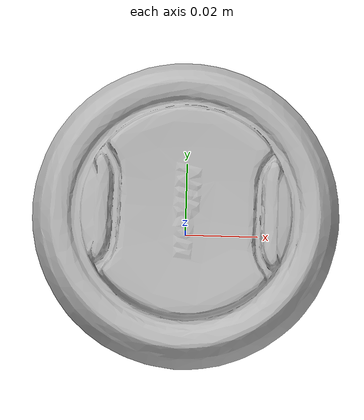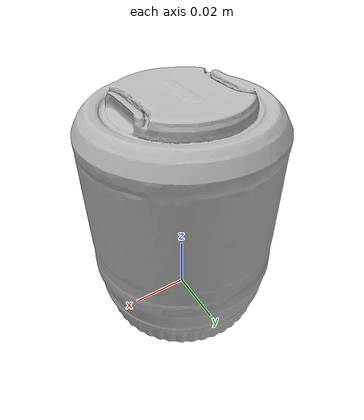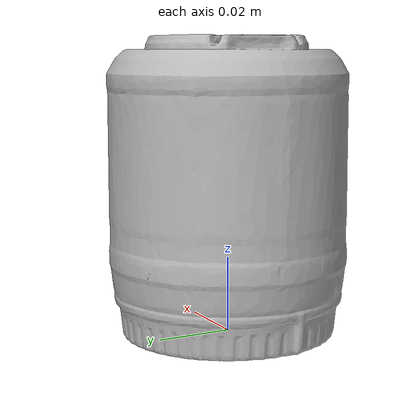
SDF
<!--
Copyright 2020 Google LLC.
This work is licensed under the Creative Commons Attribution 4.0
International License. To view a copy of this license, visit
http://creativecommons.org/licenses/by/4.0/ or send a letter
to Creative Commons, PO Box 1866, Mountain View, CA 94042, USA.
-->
<?xml version="1.0" ?>
<sdf version="1.6">
  <model name="Nikon_1_AW1_w11275mm_Lens_Silver">
    <link name="link_0">
      <visual name="visual">
        <geometry>
          <mesh>
            <uri>meshes/model.obj</uri>
          </mesh>
        </geometry>
      </visual>
      <collision name="collision_0">
        <geometry>
          <mesh>
            <uri>meshes/model.obj</uri>
          </mesh>
        </geometry>
      </collision>
    </link>
  </model>
</sdf>
